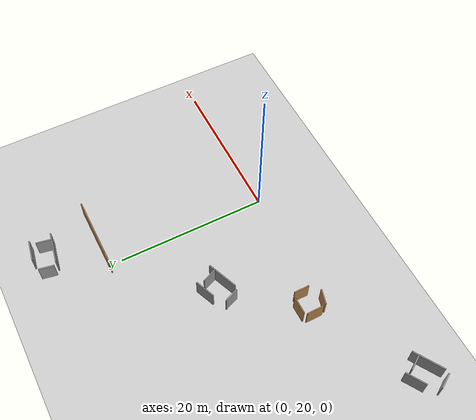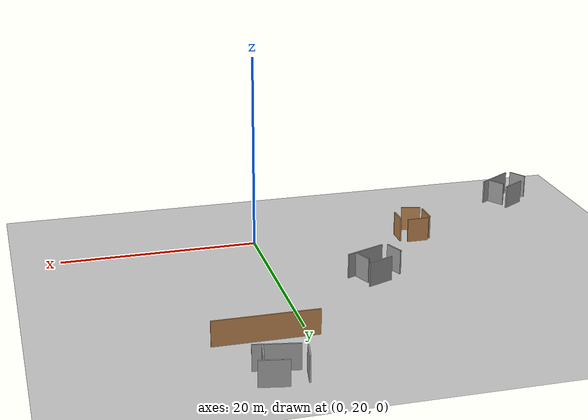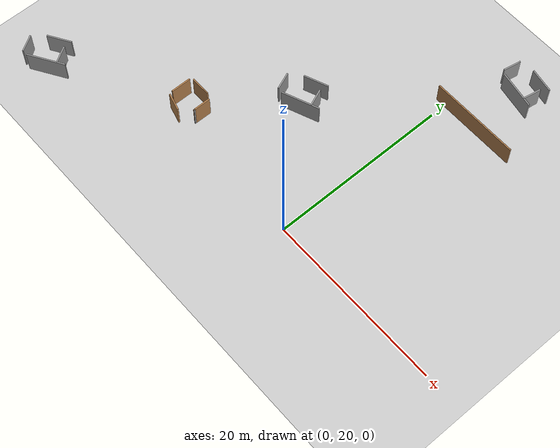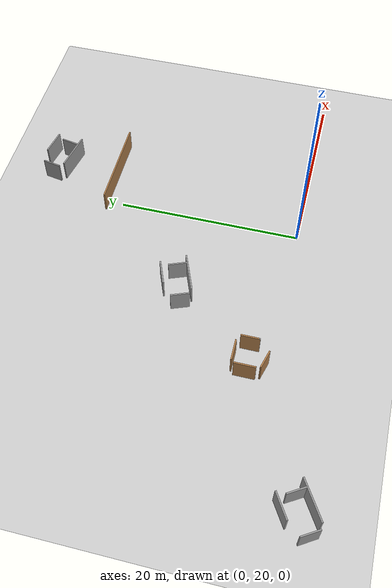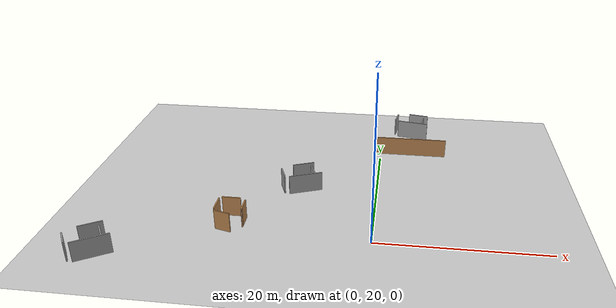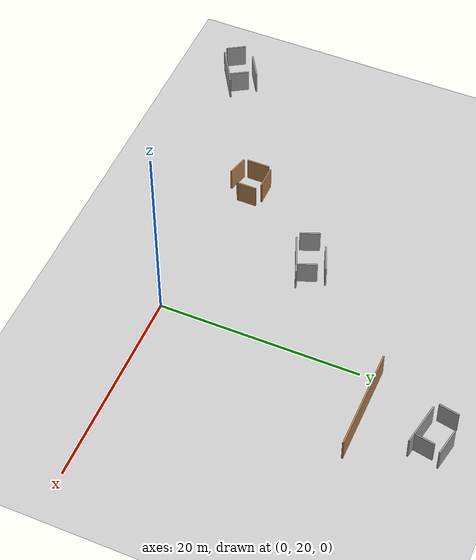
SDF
<sdf version="1.6">
 <world name="default">
  <model name="ground_plane">
   <static>1</static>
   <link name="link">
    <collision name="collision">
     <geometry><plane><normal>0 0 1</normal><size>100 100</size></plane></geometry>
     <surface><friction><ode><mu>100</mu><mu2>50</mu2></ode></friction></surface>
    </collision>
    <visual name="visual">
     <cast_shadows>0</cast_shadows>
     <geometry><plane><normal>0 0 1</normal><size>100 100</size></plane></geometry>
     <material>
      <script><uri>file://media/materials/scripts/gazebo.material</uri><name>Gazebo/Grey</name></script>
     </material>
    </visual>
   </link>
  </model>
  <model name="wall-10m-ofoghi">
   <pose>3.91473 41.7431 0 0 -0 0</pose>
   <link name="Wall_22">
    <collision name="Wall_22_Collision">
     <geometry><box><size>10 0.15 2.5</size></box></geometry>
     <pose>0 0 1.25 0 -0 0</pose>
    </collision>
    <visual name="Wall_22_Visual">
     <pose>0 0 1.25 0 -0 0</pose>
     <geometry><box><size>10 0.15 2.5</size></box></geometry>
     <material>
      <script><uri>file://media/materials/scripts/gazebo.material</uri><name>Gazebo/Wood</name></script>
      <ambient>1 1 1 1</ambient>
     </material>
    </visual>
   </link>
   <static>1</static>
  </model>
  <model name="obs2">
   <pose>-30.4291 14.6748 0 0 0 -1.79986</pose>
   <link name="Wall_0">
    <collision name="Wall_0_Collision">
     <geometry><box><size>2 0.15 2.5</size></box></geometry>
     <pose>0 0 1.25 0 -0 0</pose>
    </collision>
    <visual name="Wall_0_Visual">
     <pose>0 0 1.25 0 -0 0</pose>
     <geometry><box><size>2 0.15 2.5</size></box></geometry>
     <material>
      <script><uri>file://media/materials/scripts/gazebo.material</uri><name>Gazebo/Grey</name></script>
      <ambient>1 1 1 1</ambient>
     </material>
    </visual>
    <pose>-0.796332 1.10862 0 0 -0 0.785398</pose>
   </link>
   <link name="Wall_2">
    <collision name="Wall_2_Collision">
     <geometry><box><size>4.25 0.15 2.5</size></box></geometry>
     <pose>0 0 1.25 0 -0 0</pose>
    </collision>
    <visual name="Wall_2_Visual">
     <pose>0 0 1.25 0 -0 0</pose>
     <geometry><box><size>4.25 0.15 2.5</size></box></geometry>
     <material>
      <script><uri>file://media/materials/scripts/gazebo.material</uri><name>Gazebo/Grey</name></script>
      <ambient>1 1 1 1</ambient>
     </material>
    </visual>
    <pose>0.773928 0.982661 0 0 0 -0.785398</pose>
   </link>
   <link name="Wall_4">
    <collision name="Wall_4_Collision">
     <geometry><box><size>2.75 0.15 2.5</size></box></geometry>
     <pose>0 0 1.25 0 -0 0</pose>
    </collision>
    <visual name="Wall_4_Visual">
     <pose>0 0 1.25 0 -0 0</pose>
     <geometry><box><size>2.75 0.15 2.5</size></box></geometry>
     <material>
      <script><uri>file://media/materials/scripts/gazebo.material</uri><name>Gazebo/Grey</name></script>
      <ambient>1 1 1 1</ambient>
     </material>
    </visual>
    <pose>-1.45556 -0.740711 0 0 0 -0.785398</pose>
   </link>
   <link name="Wall_6">
    <collision name="Wall_6_Collision">
     <geometry><box><size>2 0.15 2.5</size></box></geometry>
     <pose>0 0 1.25 0 -0 0</pose>
    </collision>
    <visual name="Wall_6_Visual">
     <pose>0 0 1.25 0 -0 0</pose>
     <geometry><box><size>2 0.15 2.5</size></box></geometry>
     <material>
      <script><uri>file://media/materials/scripts/gazebo.material</uri><name>Gazebo/Grey</name></script>
      <ambient>1 1 1 1</ambient>
     </material>
    </visual>
    <pose>1.72073 -1.77816 0 0 -0 0.785398</pose>
   </link>
   <static>1</static>
  </model>
  <model name="obs2_0">
   <pose>-9.53787 31.1158 0 0 0 -1.97728</pose>
   <link name="Wall_0">
    <collision name="Wall_0_Collision">
     <geometry><box><size>2 0.15 2.5</size></box></geometry>
     <pose>0 0 1.25 0 -0 0</pose>
    </collision>
    <visual name="Wall_0_Visual">
     <pose>0 0 1.25 0 -0 0</pose>
     <geometry><box><size>2 0.15 2.5</size></box></geometry>
     <material>
      <script><uri>file://media/materials/scripts/gazebo.material</uri><name>Gazebo/Grey</name></script>
      <ambient>1 1 1 1</ambient>
     </material>
    </visual>
    <pose>-0.796332 1.10862 0 0 -0 0.785398</pose>
   </link>
   <link name="Wall_2">
    <collision name="Wall_2_Collision">
     <geometry><box><size>4.25 0.15 2.5</size></box></geometry>
     <pose>0 0 1.25 0 -0 0</pose>
    </collision>
    <visual name="Wall_2_Visual">
     <pose>0 0 1.25 0 -0 0</pose>
     <geometry><box><size>4.25 0.15 2.5</size></box></geometry>
     <material>
      <script><uri>file://media/materials/scripts/gazebo.material</uri><name>Gazebo/Grey</name></script>
      <ambient>1 1 1 1</ambient>
     </material>
    </visual>
    <pose>0.773928 0.982661 0 0 0 -0.785398</pose>
   </link>
   <link name="Wall_4">
    <collision name="Wall_4_Collision">
     <geometry><box><size>2.75 0.15 2.5</size></box></geometry>
     <pose>0 0 1.25 0 -0 0</pose>
    </collision>
    <visual name="Wall_4_Visual">
     <pose>0 0 1.25 0 -0 0</pose>
     <geometry><box><size>2.75 0.15 2.5</size></box></geometry>
     <material>
      <script><uri>file://media/materials/scripts/gazebo.material</uri><name>Gazebo/Grey</name></script>
      <ambient>1 1 1 1</ambient>
     </material>
    </visual>
    <pose>-1.45556 -0.740711 0 0 0 -0.785398</pose>
   </link>
   <link name="Wall_6">
    <collision name="Wall_6_Collision">
     <geometry><box><size>2 0.15 2.5</size></box></geometry>
     <pose>0 0 1.25 0 -0 0</pose>
    </collision>
    <visual name="Wall_6_Visual">
     <pose>0 0 1.25 0 -0 0</pose>
     <geometry><box><size>2 0.15 2.5</size></box></geometry>
     <material>
      <script><uri>file://media/materials/scripts/gazebo.material</uri><name>Gazebo/Grey</name></script>
      <ambient>1 1 1 1</ambient>
     </material>
    </visual>
    <pose>1.72073 -1.77816 0 0 -0 0.785398</pose>
   </link>
   <static>1</static>
  </model>
  <model name="obs1_8">
   <pose>-16.6128 21.8105 0 0 -0 0</pose>
   <link name="Wall_10">
    <collision name="Wall_10_Collision">
     <geometry><box><size>2 0.15 2.5</size></box></geometry>
     <pose>0 0 1.25 0 -0 0</pose>
    </collision>
    <visual name="Wall_10_Visual">
     <pose>0 0 1.25 0 -0 0</pose>
     <geometry><box><size>2 0.15 2.5</size></box></geometry>
     <material>
      <script><uri>file://media/materials/scripts/gazebo.material</uri><name>Gazebo/Wood</name></script>
      <ambient>1 1 1 1</ambient>
     </material>
    </visual>
    <pose>-0.505188 -1.46687 0 0 0 -0.261799</pose>
   </link>
   <link name="Wall_2">
    <collision name="Wall_2_Collision">
     <geometry><box><size>2.25 0.15 2.5</size></box></geometry>
     <pose>0 0 1.25 0 -0 0</pose>
    </collision>
    <visual name="Wall_2_Visual">
     <pose>0 0 1.25 0 -0 0</pose>
     <geometry><box><size>2.25 0.15 2.5</size></box></geometry>
     <material>
      <script><uri>file://media/materials/scripts/gazebo.material</uri><name>Gazebo/Wood</name></script>
      <ambient>1 1 1 1</ambient>
     </material>
    </visual>
    <pose>-1.58039 0.313508 0 0 0 -1.5708</pose>
   </link>
   <link name="Wall_5">
    <collision name="Wall_5_Collision">
     <geometry><box><size>2.25 0.15 2.5</size></box></geometry>
     <pose>0 0 1.25 0 -0 0</pose>
    </collision>
    <visual name="Wall_5_Visual">
     <pose>0 0 1.25 0 -0 0</pose>
     <geometry><box><size>2.25 0.15 2.5</size></box></geometry>
     <material>
      <script><uri>file://media/materials/scripts/gazebo.material</uri><name>Gazebo/Wood</name></script>
      <ambient>1 1 1 1</ambient>
     </material>
    </visual>
    <pose>-0.185262 1.72313 0 0 -0 0</pose>
   </link>
   <link name="Wall_7">
    <collision name="Wall_7_Collision">
     <geometry><box><size>2 0.15 2.5</size></box></geometry>
     <pose>0 0 1.25 0 -0 0</pose>
    </collision>
    <visual name="Wall_7_Visual">
     <pose>0 0 1.25 0 -0 0</pose>
     <geometry><box><size>2 0.15 2.5</size></box></geometry>
     <material>
      <script><uri>file://media/materials/scripts/gazebo.material</uri><name>Gazebo/Wood</name></script>
      <ambient>1 1 1 1</ambient>
     </material>
    </visual>
    <pose>1.58039 0.398833 0 0 0 -1.5708</pose>
   </link>
   <link name="Wall_8">
    <collision name="Wall_8_Collision">
     <geometry><box><size>0.15 0.15 2.5</size></box></geometry>
     <pose>0 0 1.25 0 -0 0</pose>
    </collision>
    <visual name="Wall_8_Visual">
     <pose>0 0 1.25 0 -0 0</pose>
     <geometry><box><size>0.15 0.15 2.5</size></box></geometry>
     <material>
      <script><uri>file://media/materials/scripts/gazebo.material</uri><name>Gazebo/Grey</name></script>
      <ambient>1 1 1 1</ambient>
     </material>
    </visual>
    <pose>1.58039 -0.526167 0 0 -0 0</pose>
   </link>
   <static>1</static>
  </model>
  <model name="obs2_11">
   <pose>4.43854 48.5264 0 0 0 -2.53958</pose>
   <link name="Wall_0">
    <collision name="Wall_0_Collision">
     <geometry><box><size>2 0.15 2.5</size></box></geometry>
     <pose>0 0 1.25 0 -0 0</pose>
    </collision>
    <visual name="Wall_0_Visual">
     <pose>0 0 1.25 0 -0 0</pose>
     <geometry><box><size>2 0.15 2.5</size></box></geometry>
     <material>
      <script><uri>file://media/materials/scripts/gazebo.material</uri><name>Gazebo/Grey</name></script>
      <ambient>1 1 1 1</ambient>
     </material>
    </visual>
    <pose>-0.796332 1.10862 0 0 -0 0.785398</pose>
   </link>
   <link name="Wall_2">
    <collision name="Wall_2_Collision">
     <geometry><box><size>4.25 0.15 2.5</size></box></geometry>
     <pose>0 0 1.25 0 -0 0</pose>
    </collision>
    <visual name="Wall_2_Visual">
     <pose>0 0 1.25 0 -0 0</pose>
     <geometry><box><size>4.25 0.15 2.5</size></box></geometry>
     <material>
      <script><uri>file://media/materials/scripts/gazebo.material</uri><name>Gazebo/Grey</name></script>
      <ambient>1 1 1 1</ambient>
     </material>
    </visual>
    <pose>0.773928 0.982661 0 0 0 -0.785398</pose>
   </link>
   <link name="Wall_4">
    <collision name="Wall_4_Collision">
     <geometry><box><size>2.75 0.15 2.5</size></box></geometry>
     <pose>0 0 1.25 0 -0 0</pose>
    </collision>
    <visual name="Wall_4_Visual">
     <pose>0 0 1.25 0 -0 0</pose>
     <geometry><box><size>2.75 0.15 2.5</size></box></geometry>
     <material>
      <script><uri>file://media/materials/scripts/gazebo.material</uri><name>Gazebo/Grey</name></script>
      <ambient>1 1 1 1</ambient>
     </material>
    </visual>
    <pose>-1.45556 -0.740711 0 0 0 -0.785398</pose>
   </link>
   <link name="Wall_6">
    <collision name="Wall_6_Collision">
     <geometry><box><size>2 0.15 2.5</size></box></geometry>
     <pose>0 0 1.25 0 -0 0</pose>
    </collision>
    <visual name="Wall_6_Visual">
     <pose>0 0 1.25 0 -0 0</pose>
     <geometry><box><size>2 0.15 2.5</size></box></geometry>
     <material>
      <script><uri>file://media/materials/scripts/gazebo.material</uri><name>Gazebo/Grey</name></script>
      <ambient>1 1 1 1</ambient>
     </material>
    </visual>
    <pose>1.72073 -1.77816 0 0 -0 0.785398</pose>
   </link>
   <static>1</static>
  </model>
 </world>
</sdf>
